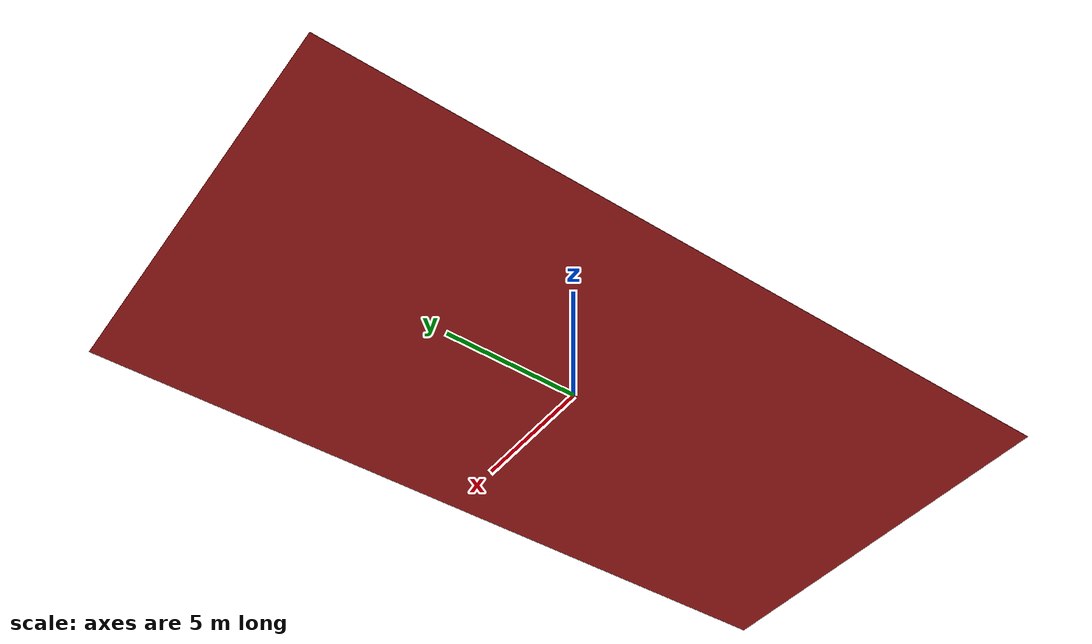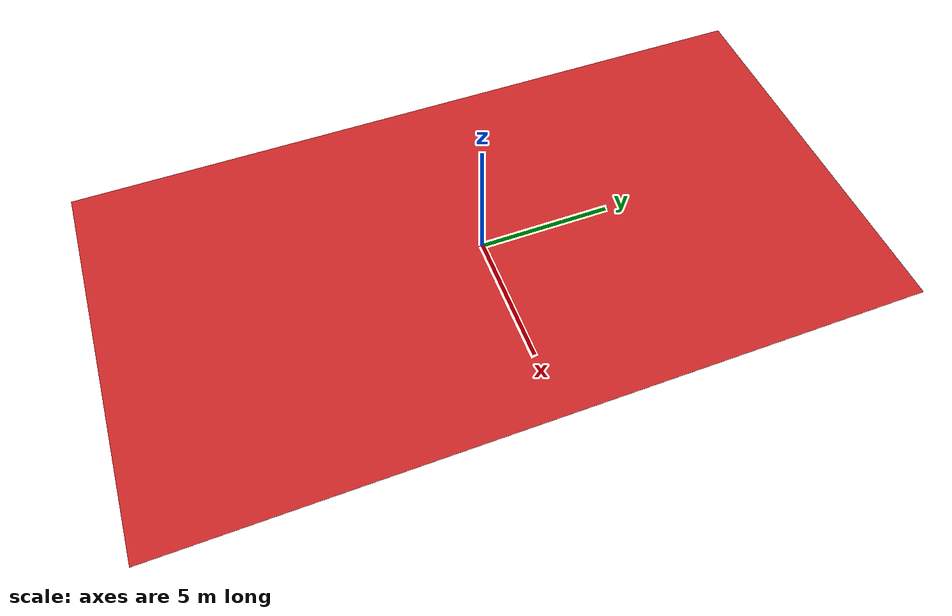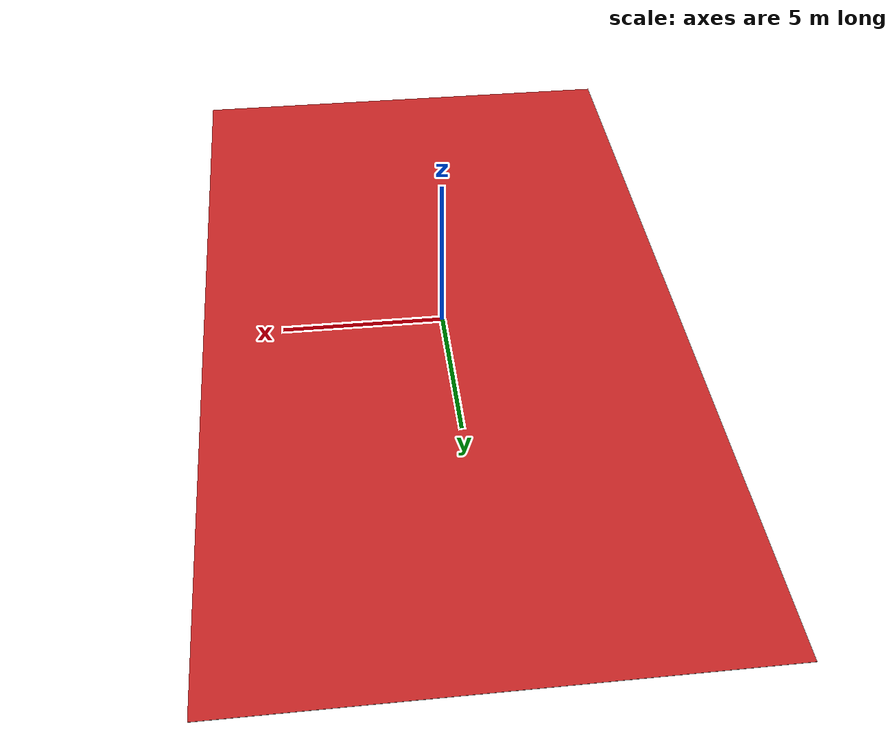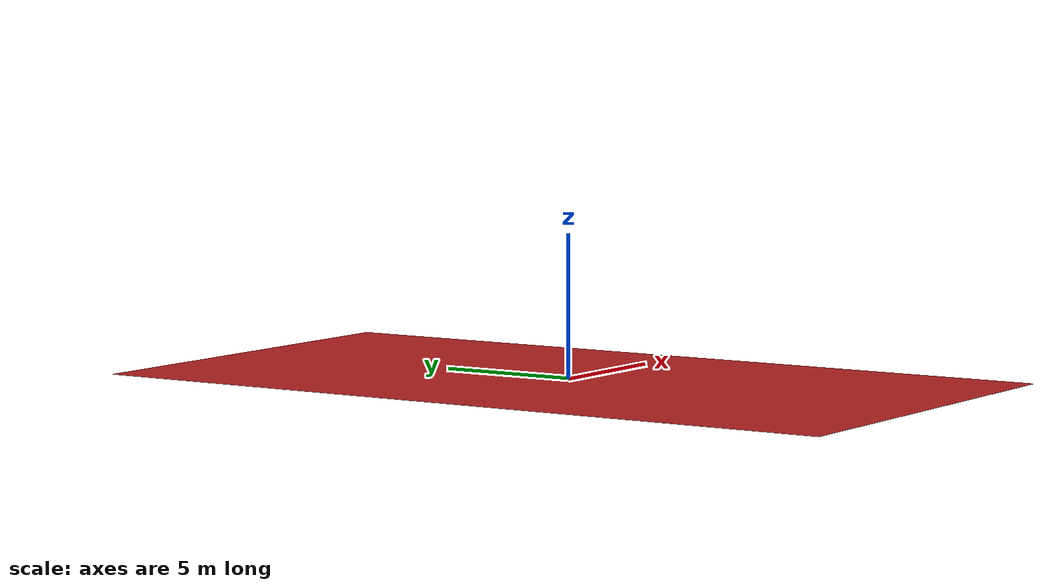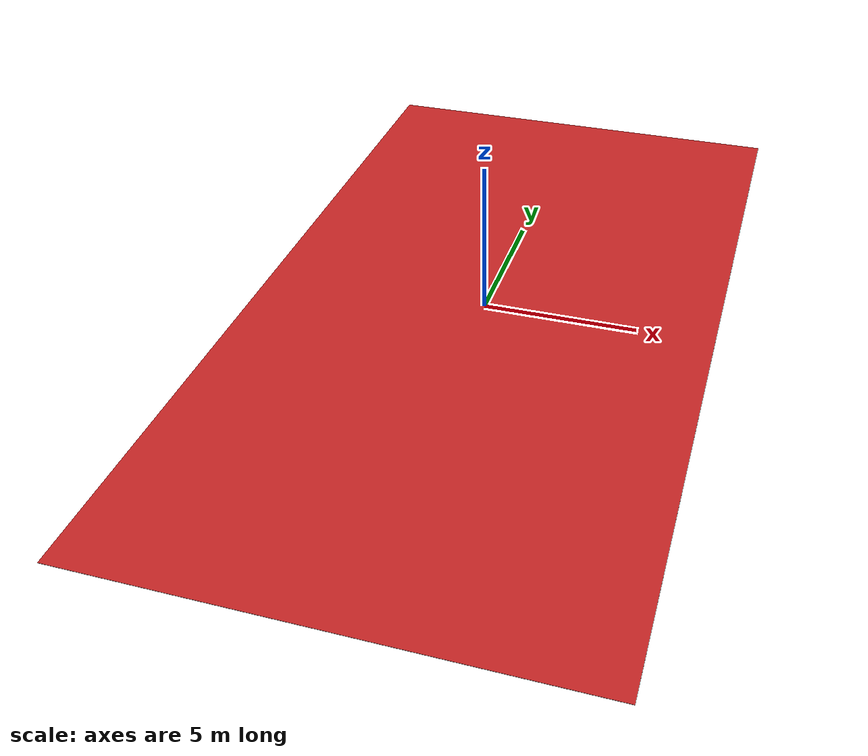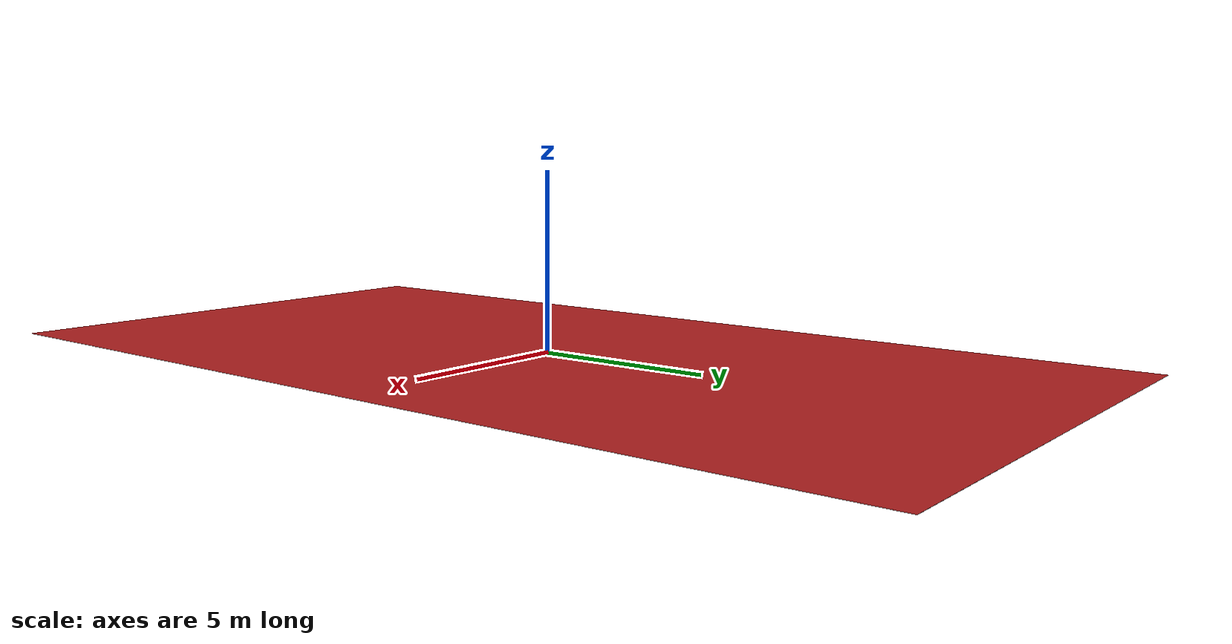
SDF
<?xml version="1.0" ?>
<sdf version="1.6">
  <model name="iarc_arena">
    <static>true</static>
    <link name="link">

      <visual name="floor_visual">
        <pose>0 0 0 0 0 1.57</pose>
        <geometry>
          <box>
            <size>28 15 0.01</size>
          </box>
        </geometry>
        <material>
          <script>
            <name>Gazebo/Red</name>
          </script>
        </material>
      </visual>

      <collision name="floor_collision">
        <pose>0 0 -0.005 0 0 1.577</pose>
        <geometry>
          <box>
            <size>28 14 0.01</size>
          </box>
        </geometry>
        <surface>
          <friction>
            <ode>
              <mu>100.0</mu>
              <mu2>50</mu2>
            </ode>
          </friction>
        </surface>
      </collision>

    </link>
  </model>
</sdf>
